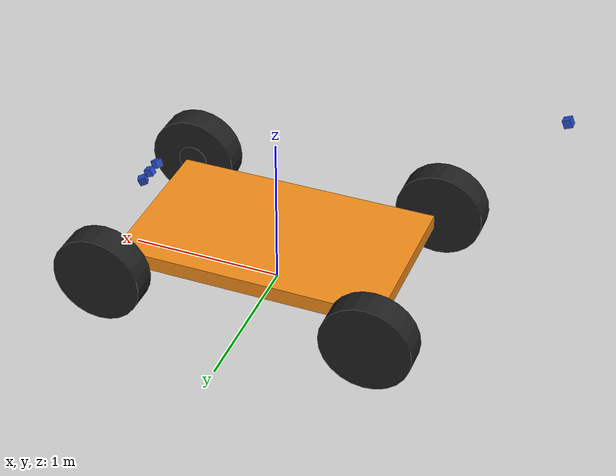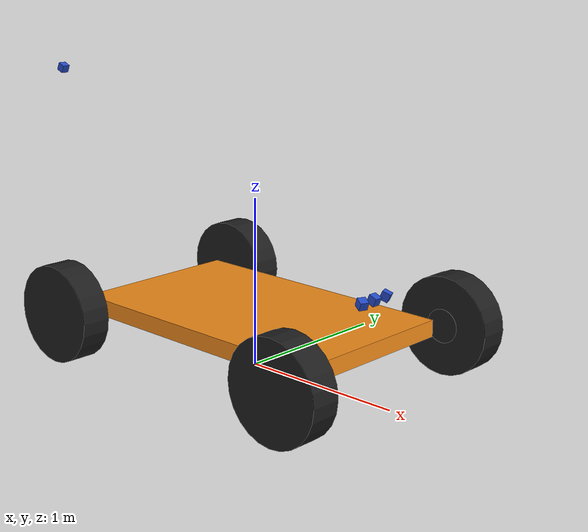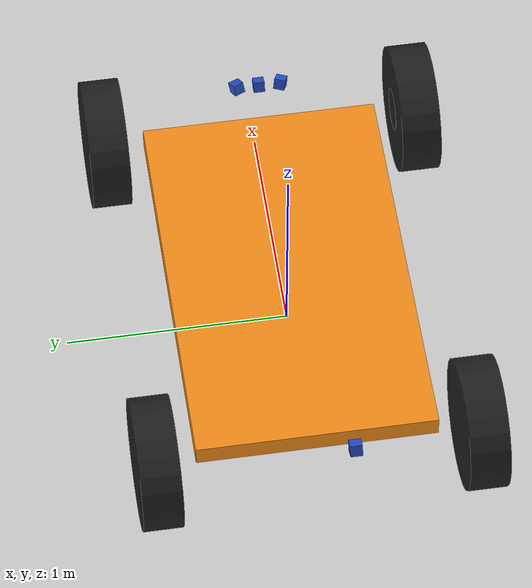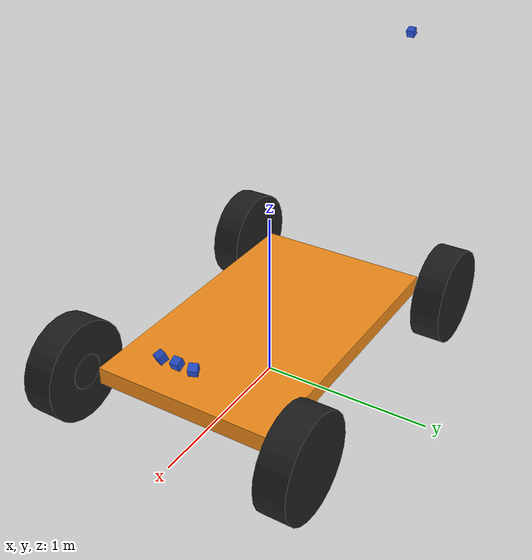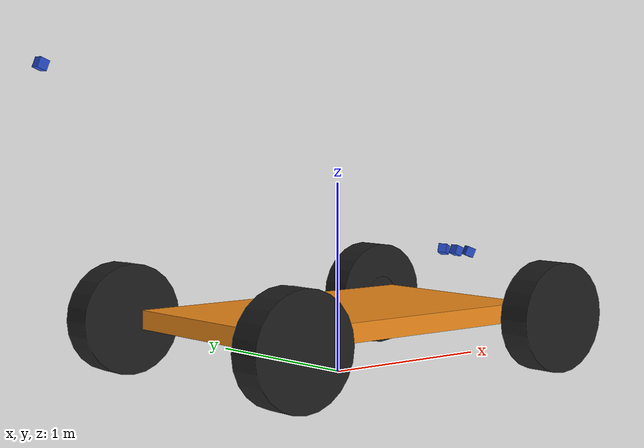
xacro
<?xml version="1.0"?>
<robot name="gem"
    xmlns:xacro="http://www.ros.org/wiki/xacro">

    <!-- Source: https://github.com/benwarrick/simple_ackermann/blob/master/ack_description/urdf/gem.xacro -->

    <!-- Vehicle Dimensions -->
    <xacro:property name="wheel_base_length" value="1.753"/>
    <xacro:property name="wheel_base_width" value="1.245"/>
    <xacro:property name="wheel_diameter" value="0.584"/>
    <xacro:property name="wheel_thickness" value="0.178"/>

    <xacro:include filename="$(find fs_description)/sensors/single_camera.urdf.xacro" />

    <!-- Macros -->
    <xacro:macro name="wheel" params="name radius width material caster_offset mass">
        <link name="${name}">
            <collision>
                <origin xyz="0 0 0" rpy="0 1.5708 1.5708" />
                <geometry>
                    <cylinder length="${width}" radius="${radius}"/>
                </geometry>
            </collision>
            <visual>
                <origin xyz="0 0 0" rpy="0 1.5708 1.5708" />
                <geometry>
                    <cylinder length="${width}" radius="${radius}"/>
                </geometry>
                <material name="black"/>
            </visual>
            <inertial>
                <origin xyz="0 0 0" rpy="0 1.5708 1.5708" />
                <mass value="0.2"/>
                <cylinder_inirtia m="${mass}" r="${radius}" h="${width}" />
            </inertial>
        </link>
        <gazebo reference="${name}">
            <mu1 value="2.0"/>
            <mu2 value="2.0"/>
            <kp value="10000000.0" />
            <kd value="1.0" />
            <fdir1 value="0 1 0"/>
            <material>${material}</material>
        </gazebo>
    </xacro:macro>

    <xacro:macro name="wheel_steer" params="lr lr_reflect">
        <xacro:wheel name="${lr}" radius="${wheel_diameter/2}" width="${wheel_thickness}" material="Gazebo/Blue" caster_offset="0" mass="6"/>
        <xacro:wheel name="${lr}_assembly" radius="0.1" width="0.001" material="Gazebo/White" caster_offset="-.5" mass="0.5" />

        <joint name="${lr}_hinge" type="revolute">
            <parent link="chassis"/>
            <child link="${lr}_assembly"/>
            <origin xyz="${wheel_base_length/2} ${lr_reflect*(wheel_base_width/2)} ${wheel_diameter/2}" rpy="0 0 0" />
            <axis xyz="0 0 1" rpy="0 0 0" />
            <limit effort="100" velocity="1" lower="-1" upper="1"/>
            <dynamics damping="0.0" friction="0.0"/>
        </joint>
        <joint name="${lr}_rotate" type="continuous">
            <parent link="${lr}_assembly"/>
            <child link="${lr}"/>
            <origin xyz="0.0 ${lr_reflect*(wheel_thickness/2)} 0.0" rpy="0 0 0" />
            <axis xyz="0 1 0" rpy="0 0 0" />
            <limit effort="100" velocity="50"/>
            <dynamics damping="0.0" friction="0.0"/>
        </joint>
        <transmission name="trans_${lr}_hing">
            <type>transmission_interface/SimpleTransmission</type>
            <joint name="${lr}_hinge">
                <hardwareInterface>EffortJointInterface</hardwareInterface>
            </joint>
            <actuator name="motor_${lr}_front">
                <hardwareInterface>EffortJointInterface</hardwareInterface>
                <mechanicalReduction>1</mechanicalReduction>
            </actuator>
        </transmission>
        <transmission name="trans_${lr}_rotate">
            <type>transmission_interface/SimpleTransmission</type>
            <joint name="${lr}_rotate">
                <hardwareInterface>EffortJointInterface</hardwareInterface>
            </joint>
            <actuator name="motor_${lr}_rotate">
                <hardwareInterface>EffortJointInterface</hardwareInterface>
                <mechanicalReduction>1</mechanicalReduction>
            </actuator>
        </transmission>
    </xacro:macro>

    <xacro:macro name="rear_wheel" params="lr lr_reflect">
        <xacro:wheel name="${lr}" radius="${wheel_diameter/2}" width="${wheel_thickness}" material="Gazebo/Blue" caster_offset="0" mass="6" />

        <joint name="${lr}_rotate" type="continuous">
            <parent link="chassis"/>
            <child link="${lr}"/>
            <origin xyz="${-wheel_base_length/2} ${lr_reflect*((wheel_base_width/2)+(wheel_thickness/2))} ${wheel_diameter/2}" rpy="0 0 0" />
            <axis xyz="0 1 0" rpy="0 0 0" />
            <limit effort="0" velocity="0"/>
            <dynamics damping="0.0" friction="0.0"/>
        </joint>

    </xacro:macro>

    <xacro:macro name="box_inertia" params="x y z m">
        <inertia ixx="${m*(y*y+z*z)/12}" ixy = "0" ixz = "0" iyy="${m*(x*x+z*z)/12}" iyz = "0" izz="${m*(x*x+z*z)/12}" />
    </xacro:macro>
    <xacro:macro name="cylinder_inirtia" params="m r h">
        <inertia ixx="${(m*((3*r*r)+(h*h)))/12}" ixy = "0" ixz = "0" iyy="${(m*((3*r*r)+(h*h)))/12}" iyz = "0" izz="${(m*r*r)/2}" />
    </xacro:macro>

    <!-- Macros End -->

    <!-- Base link -->
    <link name="base_link">
        <visual>
            <geometry>
                <box size="0.01 0.01 0.01"/>
            </geometry>
        </visual>
    </link>

    <!-- Chassis START-->
    <joint name="base_joint" type="fixed">
        <parent link="base_link"/>
        <child link="chassis"/>
    </joint>

    <link name="chassis">
        <collision>
            <origin xyz="0 0 ${wheel_diameter/2}" rpy="0 0 0"/>
            <geometry>
                <box size="${wheel_base_length} ${wheel_base_width-wheel_thickness} 0.1"/>
            </geometry>
        </collision>
        <visual>
            <origin xyz="0 0 0.3" rpy="0 0 0"/>
            <geometry>
                <box size="${wheel_base_length} ${wheel_base_width-wheel_thickness} 0.1"/>
            </geometry>
            <material name="orange"/>
        </visual>
        <inertial>
            <mass value="1"/>
            <origin xyz="0 0 0.3" rpy="0 0 0"/>
            <xacro:box_inertia x="${wheel_base_length}" y="${wheel_base_width-wheel_thickness}" z=".1" m="1" />
        </inertial>
    </link>

    <gazebo reference="chassis">
        <!--Stiffness -->
        <kp>1000000.0</kp>
        <!--Dampening-->
        <kd>0.1</kd>
        <dampingFactor>0</dampingFactor>
        <material>Gazebo/White</material>
        <selfCollide>true</selfCollide>
        <turnGravityOff>false</turnGravityOff>
        <mu1 value="0.1"/>
        <mu2 value="0.1"/>
        <fdir1 value="0 0 0"/>
    </gazebo>
    <!-- Chassis END -->

    <xacro:wheel_steer lr="right_wheel" lr_reflect="-1" />
    <xacro:wheel_steer lr="left_wheel" lr_reflect="1" />
    <xacro:rear_wheel lr="right_wheel_rear" lr_reflect="-1" />
    <xacro:rear_wheel lr="left_wheel_rear" lr_reflect="1" />

    <!-- Camera -->
    <!-- You can adjust the camera angle with the p in rpy, measured in radians. -->
    <!-- You can also increate the height of the camera by adding a number, in meters, -->
    <!-- to the z in xyz. For example, to simulate a camera mounted on a 1/2 meter post, -->
    <!-- we can replace the z value with ${wheelRadius+chassisHeight+0.5} -->
    <xacro:single_camera name="camera0">
        <origin xyz="${wheel_base_length/2} 0.1 ${(wheel_diameter/2)+0.3}" rpy="0 0.4 0.4" />
    </xacro:single_camera>
    <xacro:single_camera name="camera1">
        <origin xyz="${wheel_base_length/2} 0 ${(wheel_diameter/2)+0.3}" rpy="0 0.4 0" />
    </xacro:single_camera>
    <xacro:single_camera name="camera2">
        <origin xyz="${wheel_base_length/2} -0.1 ${(wheel_diameter/2)+0.3}" rpy="0 0.4 -0.4" />
    </xacro:single_camera>
    <xacro:single_camera name="camera_3pv">
        <origin xyz="${-wheel_base_length} 0 ${(wheel_diameter/2)+1.3}" rpy="0 0.4 0" />
    </xacro:single_camera>

    <gazebo>
        <plugin name='ackermann_drive' filename='libgazebo_ros_ackermann_drive.so'>

            <ros>
                <namespace>car</namespace>
                <remapping>cmd_vel:=cmd</remapping>
                <remapping>odom:=odom</remapping>
                <remapping>distance:=distance</remapping>
            </ros>

            <update_rate>100.0</update_rate>

            <!-- wheels -->
            <front_left_joint>left_wheel_rotate</front_left_joint>
            <front_right_joint>right_wheel_rotate</front_right_joint>
            <rear_left_joint>left_wheel_rear_rotate</rear_left_joint>
            <rear_right_joint>right_wheel_rear_rotate</rear_right_joint>
            <left_steering_joint>left_wheel_hinge</left_steering_joint>
            <right_steering_joint>right_wheel_hinge</right_steering_joint>

            <!-- Max absolute steer angle for tyre in radians-->
            <!-- Any cmd_vel angular z greater than this would be capped -->
            <max_steer>0.6458</max_steer>

            <!-- Max absolute steering angle of steering wheel -->
            <max_steering_angle>7.85</max_steering_angle>

            <!-- Max absolute linear speed in m/s -->
            <max_speed>4</max_speed>

            <!-- PID tuning -->
            <left_steering_pid_gain>150 0 1</left_steering_pid_gain>
            <left_steering_i_range>0 0</left_steering_i_range>
            <right_steering_pid_gain>150 0 1</right_steering_pid_gain>
            <right_steering_i_range>0 0</right_steering_i_range>
            <linear_velocity_pid_gain>2 0 0.01</linear_velocity_pid_gain>
            <linear_velocity_i_range>0 0</linear_velocity_i_range>

            <!-- output -->
            <publish_odom>true</publish_odom>
            <publish_odom_tf>true</publish_odom_tf>
            <publish_wheel_tf>true</publish_wheel_tf>
            <publish_distance>true</publish_distance>

            <odometry_frame>odom_frame</odometry_frame>
            <robot_base_frame>chassis</robot_base_frame>

        </plugin>
    </gazebo>

</robot>

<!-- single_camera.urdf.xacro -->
<robot xmlns:xacro="http://www.ros.org/wiki/xacro" name="single_camera">
    <xacro:macro name="box_inertia" params="x y z m">
        <inertia ixx="${m*(y*y+z*z)/12}" ixy = "0" ixz = "0" iyy="${m*(x*x+z*z)/12}" iyz = "0" izz="${m*(x*x+z*z)/12}" />
    </xacro:macro>

    <xacro:macro name="single_camera" params="name parent:=chassis fov:=1.6962634 resolution:=800 camera_mass=0.05 *origin">

        <joint name="${name}_joint" type="fixed">
            <xacro:insert_block name="origin" />
            <parent link="chassis"/>
            <child link="${name}"/>
        </joint>

        <link name="${name}">
            <collision>
                <origin xyz="0 0 0" rpy="0 0 0"/>
                <geometry>
                    <box size=".05 .05 .05"/>
                </geometry>
            </collision>

            <visual>
                <origin xyz="0 0 0" rpy="0 0 0"/>
                <geometry>
                    <box size=".05 .05 .05"/>
                </geometry>
                <material name="blue"/>
            </visual>

            <inertial>
                <mass value="${camera_mass}" />
                <origin xyz="0 0 0" rpy="0 0 0"/>
                <xacro:box_inertia x=".05" y=".05" z=".05" m="${camera_mass}" />
            </inertial>
        </link>

        <gazebo reference="${name}">
            <material>Gazebo/Blue</material>
            <sensor type="camera" name="${name}">
                <update_rate>30.0</update_rate>
                <camera name="${name}_head">
                    <horizontal_fov>${fov}</horizontal_fov>
                    <image>
                        <width>${resolution}</width>
                        <height>${resolution}</height>
                        <format>R8G8B8</format>
                    </image>
                    <clip>
                        <near>0.02</near>
                        <far>300</far>
                    </clip>
                </camera>
                <plugin name="camera_controller" filename="libgazebo_ros_camera.so">
                    <alwaysOn>true</alwaysOn>
                    <updateRate>0.0</updateRate>
                    <cameraName>${name}</cameraName>
                    <imageTopicName>image_raw</imageTopicName>
                    <cameraInfoTopicName>camera_info</cameraInfoTopicName>
                    <frameName>camera_link</frameName>
                    <hackBaseline>0.07</hackBaseline>
                    <distortionK1>0.0</distortionK1>
                    <distortionK2>0.0</distortionK2>
                    <distortionK3>0.0</distortionK3>
                    <distortionT1>0.0</distortionT1>
                    <distortionT2>0.0</distortionT2>
                </plugin>
            </sensor>
        </gazebo>
    </xacro:macro>

</robot>
